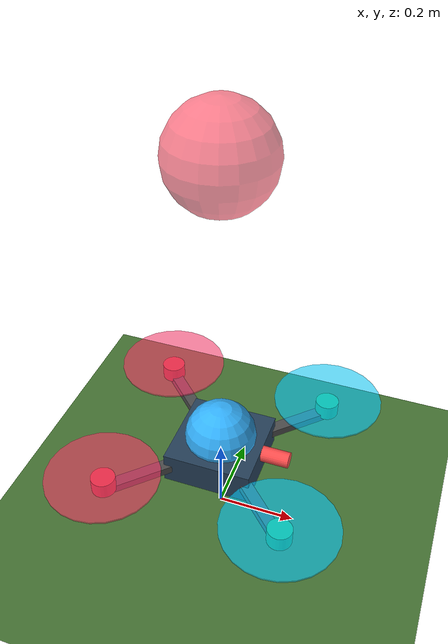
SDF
<sdf version="1.6">
 <world name="city">
  <model name="ground">
   <static>true</static>
   <link name="link">
    <collision name="c"><geometry><plane><normal>0 0 1</normal><size>300 300</size></plane></geometry></collision>
    <visual name="v">
     <cast_shadows>false</cast_shadows>
     <geometry><plane><normal>0 0 1</normal><size>300 300</size></plane></geometry>
     <material><ambient>0.27 0.45 0.2 1</ambient><diffuse>0.27 0.45 0.2 1</diffuse></material>
    </visual>
   </link>
  </model>
  <model name="quadrotor">
   <pose>0 0 0.2 0 0 0</pose>
   <static>false</static>
   <link name="base_link">
    <kinematic>true</kinematic>
    <gravity>false</gravity>
    <inertial>
     <mass>1.5</mass>
     <inertia><ixx>0.03</ixx><ixy>0.0</ixy><ixz>0.0</ixz><iyy>0.03</iyy><iyz>0.0</iyz><izz>0.05</izz></inertia>
    </inertial>
    <visual name="fuselage_visual">
     <geometry><box><size>0.22 0.22 0.08</size></box></geometry>
     <material>
      <ambient>0.1 0.15 0.2 1</ambient>
      <diffuse>0.15 0.25 0.35 1</diffuse>
      <specular>0.8 0.8 0.8 1</specular>
     </material>
    </visual>
    <visual name="canopy_visual">
     <pose>0 0 0.05 0 0 0</pose>
     <geometry><sphere><radius>0.09</radius></sphere></geometry>
     <material><ambient>0.0 0.6 0.9 1</ambient><diffuse>0.2 0.7 1.0 1</diffuse></material>
    </visual>
    <visual name="nose_visual">
     <pose>0.14 0 0.02 0 1.5708 0</pose>
     <geometry><cylinder><radius>0.02</radius><length>0.08</length></cylinder></geometry>
     <material><ambient>1.0 0.2 0.2 1</ambient><diffuse>1.0 0.3 0.3 1</diffuse></material>
    </visual>
    <visual name="arm1_visual">
     <pose>0.12 -0.12 0 0 0 -0.7854</pose>
     <geometry><box><size>0.28 0.03 0.02</size></box></geometry>
     <material><ambient>0.2 0.2 0.2 1</ambient><diffuse>0.3 0.3 0.3 1</diffuse></material>
    </visual>
    <visual name="motor1_visual">
     <pose>0.22 -0.22 0.02 0 0 0</pose>
     <geometry><cylinder><radius>0.03</radius><length>0.04</length></cylinder></geometry>
     <material><ambient>0.1 0.8 0.4 1</ambient></material>
    </visual>
    <visual name="rotor1_disc">
     <pose>0.22 -0.22 0.045 0 0 0</pose>
     <geometry><cylinder><radius>0.14</radius><length>0.005</length></cylinder></geometry>
     <material><ambient>0.0 0.9 1.0 0.6</ambient><diffuse>0.0 0.8 1.0 0.6</diffuse></material>
    </visual>
    <visual name="arm2_visual">
     <pose>0.12 0.12 0 0 0 0.7854</pose>
     <geometry><box><size>0.28 0.03 0.02</size></box></geometry>
     <material><ambient>0.2 0.2 0.2 1</ambient><diffuse>0.3 0.3 0.3 1</diffuse></material>
    </visual>
    <visual name="motor2_visual">
     <pose>0.22 0.22 0.02 0 0 0</pose>
     <geometry><cylinder><radius>0.03</radius><length>0.04</length></cylinder></geometry>
     <material><ambient>0.1 0.8 0.4 1</ambient></material>
    </visual>
    <visual name="rotor2_disc">
     <pose>0.22 0.22 0.045 0 0 0</pose>
     <geometry><cylinder><radius>0.14</radius><length>0.005</length></cylinder></geometry>
     <material><ambient>0.0 0.9 1.0 0.6</ambient><diffuse>0.0 0.8 1.0 0.6</diffuse></material>
    </visual>
    <visual name="arm3_visual">
     <pose>-0.12 0.12 0 0 0 -0.7854</pose>
     <geometry><box><size>0.28 0.03 0.02</size></box></geometry>
     <material><ambient>0.2 0.2 0.2 1</ambient><diffuse>0.3 0.3 0.3 1</diffuse></material>
    </visual>
    <visual name="motor3_visual">
     <pose>-0.22 0.22 0.02 0 0 0</pose>
     <geometry><cylinder><radius>0.03</radius><length>0.04</length></cylinder></geometry>
     <material><ambient>0.9 0.2 0.2 1</ambient></material>
    </visual>
    <visual name="rotor3_disc">
     <pose>-0.22 0.22 0.045 0 0 0</pose>
     <geometry><cylinder><radius>0.14</radius><length>0.005</length></cylinder></geometry>
     <material><ambient>1.0 0.2 0.4 0.6</ambient><diffuse>1.0 0.2 0.4 0.6</diffuse></material>
    </visual>
    <visual name="arm4_visual">
     <pose>-0.12 -0.12 0 0 0 0.7854</pose>
     <geometry><box><size>0.28 0.03 0.02</size></box></geometry>
     <material><ambient>0.2 0.2 0.2 1</ambient><diffuse>0.3 0.3 0.3 1</diffuse></material>
    </visual>
    <visual name="motor4_visual">
     <pose>-0.22 -0.22 0.02 0 0 0</pose>
     <geometry><cylinder><radius>0.03</radius><length>0.04</length></cylinder></geometry>
     <material><ambient>0.9 0.2 0.2 1</ambient></material>
    </visual>
    <visual name="rotor4_disc">
     <pose>-0.22 -0.22 0.045 0 0 0</pose>
     <geometry><cylinder><radius>0.14</radius><length>0.005</length></cylinder></geometry>
     <material><ambient>1.0 0.2 0.4 0.6</ambient><diffuse>1.0 0.2 0.4 0.6</diffuse></material>
    </visual>
    <collision name="base_collision"><geometry><box><size>0.5 0.5 0.12</size></box></geometry></collision>
   </link>
   <plugin name="udp_pose" filename="libudp_pose_plugin.so"><port>9090</port></plugin>
  </model>
  <model name="target_marker">
   <pose>0 0 1 0 0 0</pose>
   <link name="link">
    <kinematic>true</kinematic>
    <gravity>false</gravity>
    <visual name="sphere">
     <geometry><sphere><radius>0.12</radius></sphere></geometry>
     <material>
      <ambient>1 0.2 0.3 0.6</ambient>
      <diffuse>1 0.2 0.3 0.6</diffuse>
      <emissive>0.6 0.1 0.15 1</emissive>
     </material>
     <transparency>0.3</transparency>
    </visual>
   </link>
   <plugin name="udp_pose" filename="libudp_pose_plugin.so"><port>9091</port></plugin>
  </model>
 </world>
</sdf>
